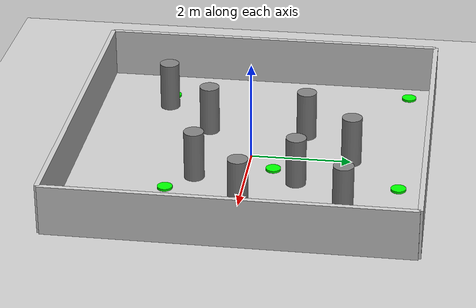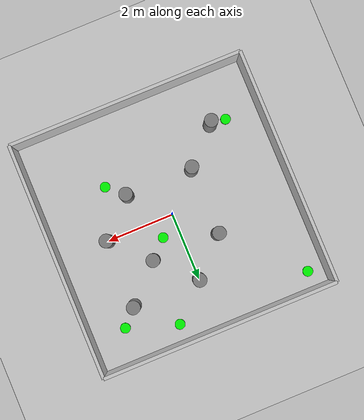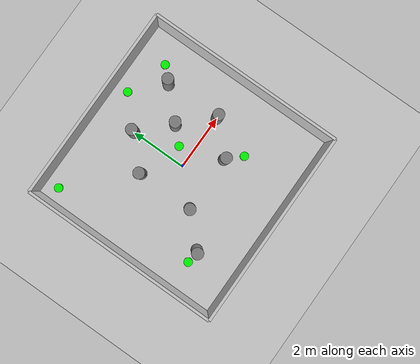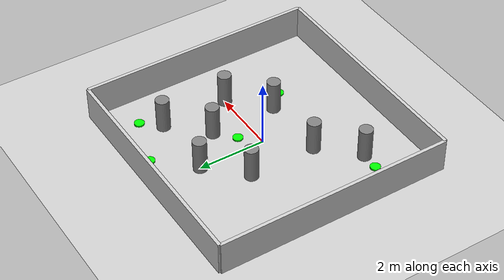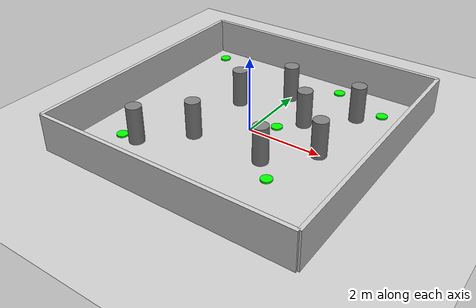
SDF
<?xml version="1.0" ?>
<sdf version="1.6">
  <world name="stage2">
    <!-- Basic Elements -->
    <include><uri>model://ground_plane</uri></include>
    <include><uri>model://sun</uri></include>

    <!-- Dynamic Goal Marker -->

    <!-- Boundary Walls -->
    <model name="wall1">
      <static>true</static>
      <pose>0 3.5 0.5 0 0 0</pose>
      <link name="link">
        <collision name="collision">
          <geometry><box><size>7 0.1 1</size></box></geometry>
        </collision>
        <visual name="visual">
          <geometry><box><size>7 0.1 1</size></box></geometry>
          <material><ambient>0.8 0.8 0.8 1</ambient></material>
        </visual>
      </link>
    </model>

    <model name="wall2">
      <static>true</static>
      <pose>0 -3.5 0.5 0 0 0</pose>
      <link name="link">
        <collision name="collision">
          <geometry><box><size>7 0.1 1</size></box></geometry>
        </collision>
        <visual name="visual">
          <geometry><box><size>7 0.1 1</size></box></geometry>
          <material><ambient>0.8 0.8 0.8 1</ambient></material>
        </visual>
      </link>
    </model>

    <model name="wall3">
      <static>true</static>
      <pose>3.5 0 0.5 0 0 1.5708</pose>
      <link name="link">
        <collision name="collision">
          <geometry><box><size>7 0.1 1</size></box></geometry>
        </collision>
        <visual name="visual">
          <geometry><box><size>7 0.1 1</size></box></geometry>
          <material><ambient>0.8 0.8 0.8 1</ambient></material>
        </visual>
      </link>
    </model>

    <model name="wall4">
      <static>true</static>
      <pose>-3.5 0 0.5 0 0 1.5708</pose>
      <link name="link">
        <collision name="collision">
          <geometry><box><size>7 0.1 1</size></box></geometry>
        </collision>
        <visual name="visual">
          <geometry><box><size>7 0.1 1</size></box></geometry>
          <material><ambient>0.8 0.8 0.8 1</ambient></material>
        </visual>
      </link>
    </model>

    <!-- Original Obstacles -->
    <model name="obstacle1">
      <static>true</static>
      <pose>-1 1 0.5 0 0 0</pose>
      <link name="link">
        <collision name="collision">
          <geometry><cylinder><radius>0.2</radius><length>1</length></cylinder></geometry>
        </collision>
        <visual name="visual">
          <geometry><cylinder><radius>0.2</radius><length>1</length></cylinder></geometry>
          <material><ambient>0.5 0.5 0.5 1</ambient></material>
        </visual>
      </link>
    </model>

    <model name="obstacle2">
      <static>true</static>
      <pose>1 1 0.5 0 0 0</pose>
      <link name="link">
        <collision name="collision">
          <geometry><cylinder><radius>0.2</radius><length>1</length></cylinder></geometry>
        </collision>
        <visual name="visual">
          <geometry><cylinder><radius>0.2</radius><length>1</length></cylinder></geometry>
          <material><ambient>0.5 0.5 0.5 1</ambient></material>
        </visual>
      </link>
    </model>

    <model name="obstacle3">
      <static>true</static>
      <pose>-1 -1 0.5 0 0 0</pose>
      <link name="link">
        <collision name="collision">
          <geometry><cylinder><radius>0.2</radius><length>1</length></cylinder></geometry>
        </collision>
        <visual name="visual">
          <geometry><cylinder><radius>0.2</radius><length>1</length></cylinder></geometry>
          <material><ambient>0.5 0.5 0.5 1</ambient></material>
        </visual>
      </link>
    </model>

    <model name="obstacle4">
      <static>true</static>
      <pose>1 -1 0.5 0 0 0</pose>
      <link name="link">
        <collision name="collision">
          <geometry><cylinder><radius>0.2</radius><length>1</length></cylinder></geometry>
        </collision>
        <visual name="visual">
          <geometry><cylinder><radius>0.2</radius><length>1</length></cylinder></geometry>
          <material><ambient>0.5 0.5 0.5 1</ambient></material>
        </visual>
      </link>
    </model>

    <!-- Additional Obstacles -->
    <model name="obstacle5">
      <static>true</static>
      <pose>0 2 0.5 0 0 0</pose>
      <link name="link">
        <collision name="collision">
          <geometry><cylinder><radius>0.2</radius><length>1</length></cylinder></geometry>
        </collision>
        <visual name="visual">
          <geometry><cylinder><radius>0.2</radius><length>1</length></cylinder></geometry>
          <material><ambient>0.5 0.5 0.5 1</ambient></material>
        </visual>
      </link>
    </model>

    <model name="obstacle6">
      <static>true</static>
      <pose>2 0 0.5 0 0 0</pose>
      <link name="link">
        <collision name="collision">
          <geometry><cylinder><radius>0.2</radius><length>1</length></cylinder></geometry>
        </collision>
        <visual name="visual">
          <geometry><cylinder><radius>0.2</radius><length>1</length></cylinder></geometry>
          <material><ambient>0.5 0.5 0.5 1</ambient></material>
        </visual>
      </link>
    </model>

    <model name="obstacle7">
      <static>true</static>
      <pose>-2 -2 0.5 0 0 0</pose>
      <link name="link">
        <collision name="collision">
          <geometry><cylinder><radius>0.2</radius><length>1</length></cylinder></geometry>
        </collision>
        <visual name="visual">
          <geometry><cylinder><radius>0.2</radius><length>1</length></cylinder></geometry>
          <material><ambient>0.5 0.5 0.5 1</ambient></material>
        </visual>
      </link>
    </model>

    <model name="obstacle8">
      <static>true</static>
      <pose>2 2 0.5 0 0 0</pose>
      <link name="link">
        <collision name="collision">
          <geometry><cylinder><radius>0.2</radius><length>1</length></cylinder></geometry>
        </collision>
        <visual name="visual">
          <geometry><cylinder><radius>0.2</radius><length>1</length></cylinder></geometry>
          <material><ambient>0.5 0.5 0.5 1</ambient></material>
        </visual>
      </link>
    </model>
    <model name="goal1_marker">
      <static>true</static>
      <pose>0.5 0.5 0.01 0 0 0</pose>
      <link name="link">
        <!-- Main goal marker -->
        <visual name="visual">
          <geometry>
            <cylinder>
              <radius>0.15</radius>
              <length>0.05</length>
            </cylinder>
          </geometry>
          <material>
            <ambient>0 1 0 0.9</ambient>
            <diffuse>0 1 0 0.9</diffuse>
            <emissive>0 0.3 0 1</emissive>
          </material>
        </visual>
      </link>
    </model>

    <model name="goal2_marker">
      <static>true</static>
      <pose>1 3 0.01 0 0 0</pose>
      <link name="link">
        <!-- Main goal marker -->
        <visual name="visual">
          <geometry>
            <cylinder>
              <radius>0.15</radius>
              <length>0.05</length>
            </cylinder>
          </geometry>
          <material>
            <ambient>0 1 0 0.9</ambient>
            <diffuse>0 1 0 0.9</diffuse>
            <emissive>0 0.3 0 1</emissive>
          </material>
        </visual>
      </link>
    </model>

    <model name="goal3_marker">
      <static>true</static>
      <pose>-2.5 -2 0.01 0 0 0</pose>
      <link name="link">
        <!-- Main goal marker -->
        <visual name="visual">
          <geometry>
            <cylinder>
              <radius>0.15</radius>
              <length>0.05</length>
            </cylinder>
          </geometry>
          <material>
            <ambient>0 1 0 0.9</ambient>
            <diffuse>0 1 0 0.9</diffuse>
            <emissive>0 0.3 0 1</emissive>
          </material>
        </visual>
      </link>
    </model>

    <model name="goal4_marker">
      <static>true</static>
      <pose>1.5 -1.5 0.01 0 0 0</pose>
      <link name="link">
        <!-- Main goal marker -->
        <visual name="visual">
          <geometry>
            <cylinder>
              <radius>0.15</radius>
              <length>0.05</length>
            </cylinder>
          </geometry>
          <material>
            <ambient>0 1 0 0.9</ambient>
            <diffuse>0 1 0 0.9</diffuse>
            <emissive>0 0.3 0 1</emissive>
          </material>
        </visual>
      </link>
    </model>
      <model name="goal5_marker">
      <static>true</static>
      <pose>2.5 2.5 0.01 0 0 0</pose>
      <link name="link">
        <!-- Main goal marker -->
        <visual name="visual">
          <geometry>
            <cylinder>
              <radius>0.15</radius>
              <length>0.05</length>
            </cylinder>
          </geometry>
          <material>
            <ambient>0 1 0 0.9</ambient>
            <diffuse>0 1 0 0.9</diffuse>
            <emissive>0 0.3 0 1</emissive>
          </material>
        </visual>
      </link>
    </model>
    <model name="goal6_marker">
      <static>true</static>
      <pose>-3 3 0.01 0 0 0</pose>
      <link name="link">
        <!-- Main goal marker -->
        <visual name="visual">
          <geometry>
            <cylinder>
              <radius>0.15</radius>
              <length>0.05</length>
            </cylinder>
          </geometry>
          <material>
            <ambient>0 1 0 0.9</ambient>
            <diffuse>0 1 0 0.9</diffuse>
            <emissive>0 0.3 0 1</emissive>
          </material>
        </visual>
      </link>
    </model>

  </world>
</sdf>
